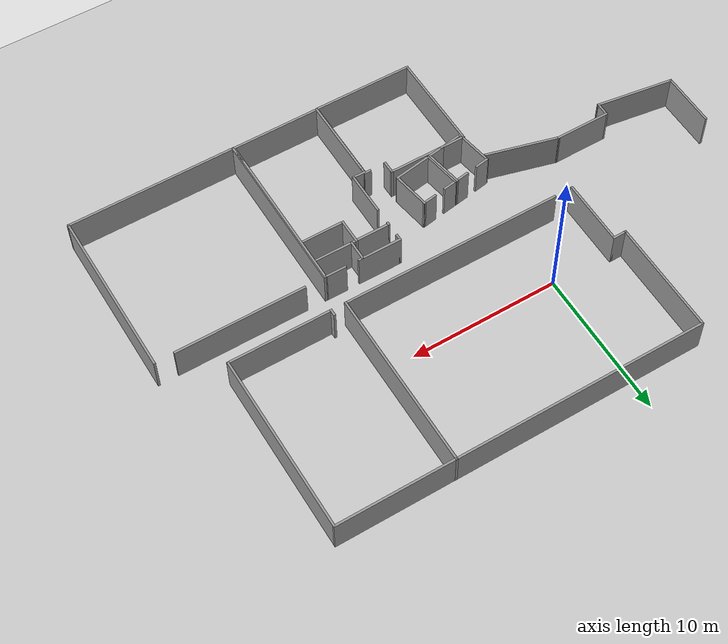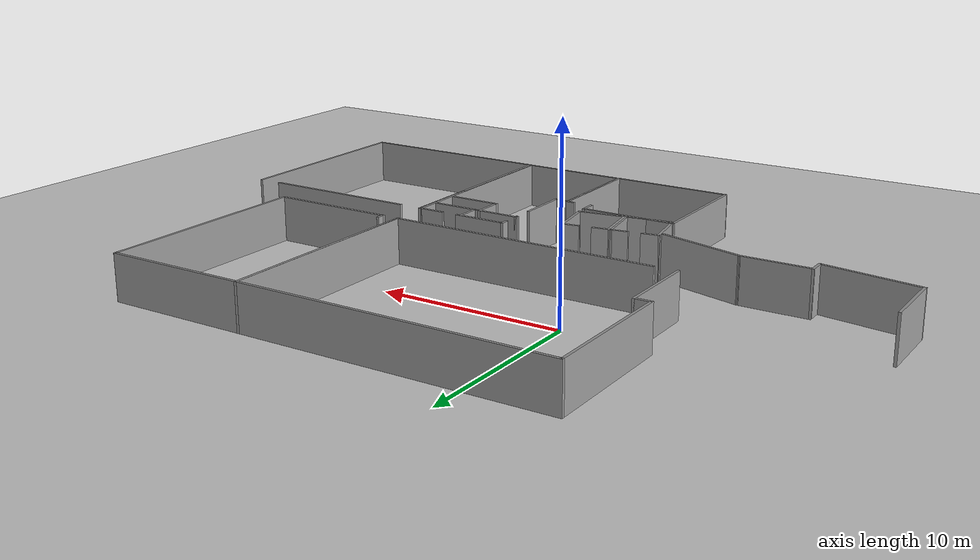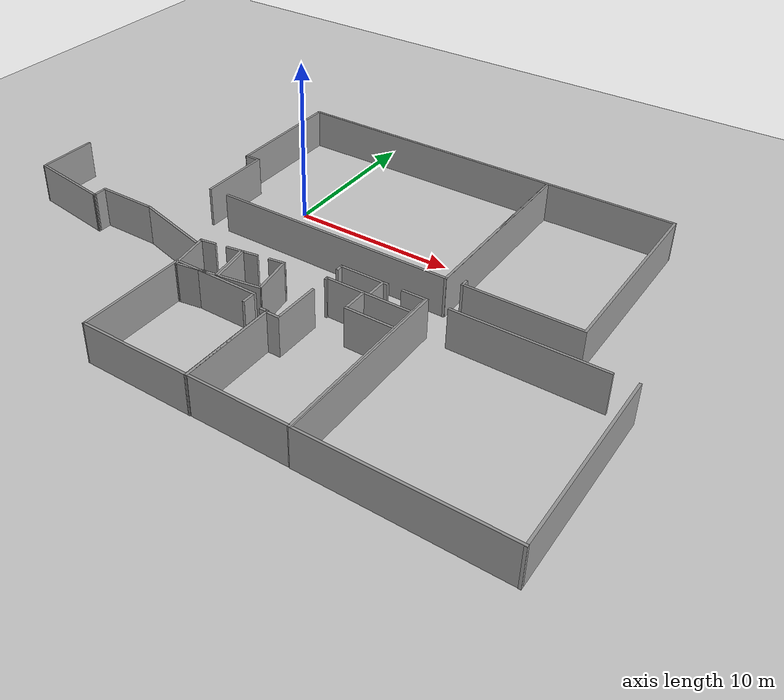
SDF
<sdf version="1.6">
 <world name="default">
  <model name="ground_plane">
   <static>1</static>
   <link name="link">
    <collision name="collision">
     <geometry><plane><normal>0 0 1</normal><size>100 100</size></plane></geometry>
     <surface><friction><ode><mu>100</mu><mu2>50</mu2></ode></friction></surface>
    </collision>
    <visual name="visual">
     <cast_shadows>0</cast_shadows>
     <geometry><plane><normal>0 0 1</normal><size>100 100</size></plane></geometry>
     <material>
      <script><uri>file://media/materials/scripts/gazebo.material</uri><name>Gazebo/Grey</name></script>
     </material>
    </visual>
   </link>
  </model>
  <model name="203">
   <pose>3.7245 2.023 0 0 -0 0</pose>
   <link name="Wall_0">
    <collision name="Wall_0_Collision">
     <geometry><box><size>15 0.15 2.5</size></box></geometry>
     <pose>0 0 1.25 0 -0 0</pose>
    </collision>
    <visual name="Wall_0_Visual">
     <pose>0 0 1.25 0 -0 0</pose>
     <geometry><box><size>15 0.15 2.5</size></box></geometry>
     <material>
      <script><uri>file://media/materials/scripts/gazebo.material</uri><name>Gazebo/Grey</name></script>
      <ambient>1 1 1 1</ambient>
     </material>
     <meta><layer>0</layer></meta>
    </visual>
    <pose>1.0725 -6.013 0 0 -0 0</pose>
   </link>
   <link name="Wall_1">
    <collision name="Wall_1_Collision">
     <geometry><box><size>12.192 0.15 2.5</size></box></geometry>
     <pose>0 0 1.25 0 -0 0</pose>
    </collision>
    <visual name="Wall_1_Visual">
     <pose>0 0 1.25 0 -0 0</pose>
     <geometry><box><size>12.192 0.15 2.5</size></box></geometry>
     <material>
      <script><uri>file://media/materials/scripts/gazebo.material</uri><name>Gazebo/Grey</name></script>
      <ambient>1 1 1 1</ambient>
     </material>
     <meta><layer>0</layer></meta>
    </visual>
    <pose>8.4975 0.008 0 0 -0 1.5708</pose>
   </link>
   <link name="Wall_2">
    <collision name="Wall_2_Collision">
     <geometry><box><size>17.145 0.15 2.5</size></box></geometry>
     <pose>0 0 1.25 0 -0 0</pose>
    </collision>
    <visual name="Wall_2_Visual">
     <pose>0 0 1.25 0 -0 0</pose>
     <geometry><box><size>17.145 0.15 2.5</size></box></geometry>
     <material>
      <script><uri>file://media/materials/scripts/gazebo.material</uri><name>Gazebo/Grey</name></script>
      <ambient>1 1 1 1</ambient>
     </material>
     <meta><layer>0</layer></meta>
    </visual>
    <pose>-0 6.029 0 0 -0 3.14159</pose>
   </link>
   <link name="Wall_3">
    <collision name="Wall_3_Collision">
     <geometry><box><size>7.786 0.15 2.5</size></box></geometry>
     <pose>0 0 1.25 0 -0 0</pose>
    </collision>
    <visual name="Wall_3_Visual">
     <pose>0 0 1.25 0 -0 0</pose>
     <geometry><box><size>7.786 0.15 2.5</size></box></geometry>
     <material>
      <script><uri>file://media/materials/scripts/gazebo.material</uri><name>Gazebo/Grey</name></script>
      <ambient>1 1 1 1</ambient>
     </material>
     <meta><layer>0</layer></meta>
    </visual>
    <pose>-8.4975 2.211 0 0 -0 -1.5708</pose>
   </link>
   <link name="Wall_4">
    <collision name="Wall_4_Collision">
     <geometry><box><size>1 0.15 2.5</size></box></geometry>
     <pose>0 0 1.25 0 -0 0</pose>
    </collision>
    <visual name="Wall_4_Visual">
     <pose>0 0 1.25 0 -0 0</pose>
     <geometry><box><size>1 0.15 2.5</size></box></geometry>
     <material>
      <script><uri>file://media/materials/scripts/gazebo.material</uri><name>Gazebo/Grey</name></script>
      <ambient>1 1 1 1</ambient>
     </material>
     <meta><layer>0</layer></meta>
    </visual>
    <pose>-8.0725 -1.607 0 0 -0 0</pose>
   </link>
   <link name="Wall_5">
    <collision name="Wall_5_Collision">
     <geometry><box><size>4.572 0.15 2.5</size></box></geometry>
     <pose>0 0 1.25 0 -0 0</pose>
    </collision>
    <visual name="Wall_5_Visual">
     <pose>0 0 1.25 0 -0 0</pose>
     <geometry><box><size>4.572 0.15 2.5</size></box></geometry>
     <material>
      <script><uri>file://media/materials/scripts/gazebo.material</uri><name>Gazebo/Grey</name></script>
      <ambient>1 1 1 1</ambient>
     </material>
     <meta><layer>0</layer></meta>
    </visual>
    <pose>-7.6475 -3.818 0 0 -0 -1.5708</pose>
   </link>
   <static>1</static>
  </model>
  <model name="classrooms">
   <pose>16.1404 2.02516 0 0 -0 0</pose>
   <link name="Wall_39">
    <collision name="Wall_39_Collision">
     <geometry><box><size>12.192 0.15 2.5</size></box></geometry>
     <pose>0 0 1.25 0 -0 0</pose>
    </collision>
    <visual name="Wall_39_Visual">
     <pose>0 0 1.25 0 -0 0</pose>
     <geometry><box><size>12.192 0.15 2.5</size></box></geometry>
     <material>
      <script><uri>file://media/materials/scripts/gazebo.material</uri><name>Gazebo/Grey</name></script>
      <ambient>1 1 1 1</ambient>
     </material>
     <meta><layer>0</layer></meta>
    </visual>
    <pose>3.92486 -0.000205 0 0 -0 1.5708</pose>
   </link>
   <link name="Wall_40">
    <collision name="Wall_40_Collision">
     <geometry><box><size>7.99972 0.15 2.5</size></box></geometry>
     <pose>0 0 1.25 0 -0 0</pose>
    </collision>
    <visual name="Wall_40_Visual">
     <pose>0 0 1.25 0 -0 0</pose>
     <geometry><box><size>7.99972 0.15 2.5</size></box></geometry>
     <material>
      <script><uri>file://media/materials/scripts/gazebo.material</uri><name>Gazebo/Grey</name></script>
      <ambient>1 1 1 1</ambient>
     </material>
     <meta><layer>0</layer></meta>
    </visual>
    <pose>0 6.02093 0 0 -0 3.14156</pose>
   </link>
   <link name="Wall_41">
    <collision name="Wall_41_Collision">
     <geometry><box><size>12.1923 0.15 2.5</size></box></geometry>
     <pose>0 0 1.25 0 -0 0</pose>
    </collision>
    <visual name="Wall_41_Visual">
     <pose>0 0 1.25 0 -0 0</pose>
     <geometry><box><size>12.1923 0.15 2.5</size></box></geometry>
     <material>
      <script><uri>file://media/materials/scripts/gazebo.material</uri><name>Gazebo/Grey</name></script>
      <ambient>1 1 1 1</ambient>
     </material>
     <meta><layer>0</layer></meta>
    </visual>
    <pose>-3.92486 6.8e-05 0 0 -0 -1.5708</pose>
   </link>
   <link name="Wall_43">
    <collision name="Wall_43_Collision">
     <geometry><box><size>7 0.15 2.5</size></box></geometry>
     <pose>0 0 1.25 0 -0 0</pose>
    </collision>
    <visual name="Wall_43_Visual">
     <pose>0 0 1.25 0 -0 0</pose>
     <geometry><box><size>7 0.15 2.5</size></box></geometry>
     <material>
      <script><uri>file://media/materials/scripts/gazebo.material</uri><name>Gazebo/Grey</name></script>
      <ambient>1 1 1 1</ambient>
     </material>
     <meta><layer>0</layer></meta>
    </visual>
    <pose>0.49986 -6.02121 0 0 -0 3.14159</pose>
   </link>
   <link name="Wall_44">
    <collision name="Wall_44_Collision">
     <geometry><box><size>0.5 0.15 2.5</size></box></geometry>
     <pose>0 0 1.25 0 -0 0</pose>
    </collision>
    <visual name="Wall_44_Visual">
     <pose>0 0 1.25 0 -0 0</pose>
     <geometry><box><size>0.5 0.15 2.5</size></box></geometry>
     <material>
      <script><uri>file://media/materials/scripts/gazebo.material</uri><name>Gazebo/Grey</name></script>
      <ambient>1 1 1 1</ambient>
     </material>
     <meta><layer>0</layer></meta>
    </visual>
    <pose>-2.92514 -5.84621 0 0 -0 1.5708</pose>
   </link>
   <static>1</static>
  </model>
  <model name="207">
   <pose>18.0365 -11.8818 0 0 -0 0</pose>
   <link name="Wall_50">
    <collision name="Wall_50_Collision">
     <geometry><box><size>11.46 0.15 2.5</size></box></geometry>
     <pose>0 0 1.25 0 -0 0</pose>
    </collision>
    <visual name="Wall_50_Visual">
     <pose>0 0 1.25 0 -0 0</pose>
     <geometry><box><size>11.46 0.15 2.5</size></box></geometry>
     <material>
      <script><uri>file://media/materials/scripts/gazebo.material</uri><name>Gazebo/Grey</name></script>
      <ambient>1 1 1 1</ambient>
     </material>
     <meta><layer>0</layer></meta>
    </visual>
    <pose>7.2e-05 -5.65487 0 0 -0 -2.4e-05</pose>
   </link>
   <link name="Wall_51">
    <collision name="Wall_51_Collision">
     <geometry><box><size>11.5001 0.15 2.5</size></box></geometry>
     <pose>0 0 1.25 0 -0 0</pose>
    </collision>
    <visual name="Wall_51_Visual">
     <pose>0 0 1.25 0 -0 0</pose>
     <geometry><box><size>11.5001 0.15 2.5</size></box></geometry>
     <material>
      <script><uri>file://media/materials/scripts/gazebo.material</uri><name>Gazebo/Grey</name></script>
      <ambient>1 1 1 1</ambient>
     </material>
     <meta><layer>0</layer></meta>
    </visual>
    <pose>5.65493 -1e-06 0 0 -0 1.5708</pose>
   </link>
   <link name="Wall_53">
    <collision name="Wall_53_Collision">
     <geometry><box><size>11.4597 0.15 2.5</size></box></geometry>
     <pose>0 0 1.25 0 -0 0</pose>
    </collision>
    <visual name="Wall_53_Visual">
     <pose>0 0 1.25 0 -0 0</pose>
     <geometry><box><size>11.4597 0.15 2.5</size></box></geometry>
     <material>
      <script><uri>file://media/materials/scripts/gazebo.material</uri><name>Gazebo/Grey</name></script>
      <ambient>1 1 1 1</ambient>
     </material>
     <meta><layer>0</layer></meta>
    </visual>
    <pose>-5.65493 0.020199 0 0 -0 -1.57077</pose>
   </link>
   <link name="Wall_56">
    <collision name="Wall_56_Collision">
     <geometry><box><size>8.76 0.15 2.5</size></box></geometry>
     <pose>0 0 1.25 0 -0 0</pose>
    </collision>
    <visual name="Wall_56_Visual">
     <pose>0 0 1.25 0 -0 0</pose>
     <geometry><box><size>8.76 0.15 2.5</size></box></geometry>
     <material>
      <script><uri>file://media/materials/scripts/gazebo.material</uri><name>Gazebo/Grey</name></script>
      <ambient>1 1 1 1</ambient>
     </material>
     <meta><layer>0</layer></meta>
    </visual>
    <pose>-7.2e-05 5.67506 0 0 -0 0</pose>
   </link>
   <static>1</static>
  </model>
  <model name="205">
   <pose>9.3396 -11.8618 0 0 -0 0</pose>
   <link name="Wall_59">
    <collision name="Wall_59_Collision">
     <geometry><box><size>6.096 0.15 2.5</size></box></geometry>
     <pose>0 0 1.25 0 -0 0</pose>
    </collision>
    <visual name="Wall_59_Visual">
     <pose>0 0 1.25 0 -0 0</pose>
     <geometry><box><size>6.096 0.15 2.5</size></box></geometry>
     <material>
      <script><uri>file://media/materials/scripts/gazebo.material</uri><name>Gazebo/Grey</name></script>
      <ambient>1 1 1 1</ambient>
     </material>
     <meta><layer>0</layer></meta>
    </visual>
    <pose>0.000181 -5.65489 0 0 -0 0</pose>
   </link>
   <link name="Wall_60">
    <collision name="Wall_60_Collision">
     <geometry><box><size>11.46 0.15 2.5</size></box></geometry>
     <pose>0 0 1.25 0 -0 0</pose>
    </collision>
    <visual name="Wall_60_Visual">
     <pose>0 0 1.25 0 -0 0</pose>
     <geometry><box><size>11.46 0.15 2.5</size></box></geometry>
     <material>
      <script><uri>file://media/materials/scripts/gazebo.material</uri><name>Gazebo/Grey</name></script>
      <ambient>1 1 1 1</ambient>
     </material>
     <meta><layer>0</layer></meta>
    </visual>
    <pose>2.973 2e-06 0 0 -0 1.57083</pose>
   </link>
   <link name="Wall_63">
    <collision name="Wall_63_Collision">
     <geometry><box><size>5.23836 0.15 2.5</size></box></geometry>
     <pose>0 0 1.25 0 -0 0</pose>
    </collision>
    <visual name="Wall_63_Visual">
     <pose>0 0 1.25 0 -0 0</pose>
     <geometry><box><size>5.23836 0.15 2.5</size></box></geometry>
     <material>
      <script><uri>file://media/materials/scripts/gazebo.material</uri><name>Gazebo/Grey</name></script>
      <ambient>1 1 1 1</ambient>
     </material>
     <meta><layer>0</layer></meta>
    </visual>
    <pose>0.332822 4.3449 0 0 -0 0</pose>
   </link>
   <link name="Wall_65">
    <collision name="Wall_65_Collision">
     <geometry><box><size>1.4 0.15 2.5</size></box></geometry>
     <pose>0 0 1.25 0 -0 0</pose>
    </collision>
    <visual name="Wall_65_Visual">
     <pose>0 0 1.25 0 -0 0</pose>
     <geometry><box><size>1.4 0.15 2.5</size></box></geometry>
     <material>
      <script><uri>file://media/materials/scripts/gazebo.material</uri><name>Gazebo/Grey</name></script>
      <ambient>1 1 1 1</ambient>
     </material>
     <meta><layer>0</layer></meta>
    </visual>
    <pose>0.397839 5.00182 0 0 -0 1.5708</pose>
   </link>
   <link name="Wall_67">
    <collision name="Wall_67_Collision">
     <geometry><box><size>1.75 0.15 2.5</size></box></geometry>
     <pose>0 0 1.25 0 -0 0</pose>
    </collision>
    <visual name="Wall_67_Visual">
     <pose>0 0 1.25 0 -0 0</pose>
     <geometry><box><size>1.75 0.15 2.5</size></box></geometry>
     <material>
      <script><uri>file://media/materials/scripts/gazebo.material</uri><name>Gazebo/Grey</name></script>
      <ambient>1 1 1 1</ambient>
     </material>
     <meta><layer>0</layer></meta>
    </visual>
    <pose>0.076823 3.55676 0 0 -0 -1.5708</pose>
   </link>
   <link name="Wall_68">
    <collision name="Wall_68_Collision">
     <geometry><box><size>3 0.15 2.5</size></box></geometry>
     <pose>0 0 1.25 0 -0 0</pose>
    </collision>
    <visual name="Wall_68_Visual">
     <pose>0 0 1.25 0 -0 0</pose>
     <geometry><box><size>3 0.15 2.5</size></box></geometry>
     <material>
      <script><uri>file://media/materials/scripts/gazebo.material</uri><name>Gazebo/Grey</name></script>
      <ambient>1 1 1 1</ambient>
     </material>
     <meta><layer>0</layer></meta>
    </visual>
    <pose>1.50182 2.75676 0 0 -0 0</pose>
   </link>
   <link name="Wall_70">
    <collision name="Wall_70_Collision">
     <geometry><box><size>6 0.15 2.5</size></box></geometry>
     <pose>0 0 1.25 0 -0 0</pose>
    </collision>
    <visual name="Wall_70_Visual">
     <pose>0 0 1.25 0 -0 0</pose>
     <geometry><box><size>6 0.15 2.5</size></box></geometry>
     <material>
      <script><uri>file://media/materials/scripts/gazebo.material</uri><name>Gazebo/Grey</name></script>
      <ambient>1 1 1 1</ambient>
     </material>
     <meta><layer>0</layer></meta>
    </visual>
    <pose>-2.973 -2.73 0 0 -0 1.57086</pose>
   </link>
   <link name="Wall_71">
    <collision name="Wall_71_Collision">
     <geometry><box><size>0.912 0.15 2.5</size></box></geometry>
     <pose>0 0 1.25 0 -0 0</pose>
    </collision>
    <visual name="Wall_71_Visual">
     <pose>0 0 1.25 0 -0 0</pose>
     <geometry><box><size>0.912 0.15 2.5</size></box></geometry>
     <material>
      <script><uri>file://media/materials/scripts/gazebo.material</uri><name>Gazebo/Grey</name></script>
      <ambient>1 1 1 1</ambient>
     </material>
     <meta><layer>0</layer></meta>
    </visual>
    <pose>-2.59218 0.194898 0 0 -0 0</pose>
   </link>
   <link name="Wall_74">
    <collision name="Wall_74_Collision">
     <geometry><box><size>3 0.15 2.5</size></box></geometry>
     <pose>0 0 1.25 0 -0 0</pose>
    </collision>
    <visual name="Wall_74_Visual">
     <pose>0 0 1.25 0 -0 0</pose>
     <geometry><box><size>3 0.15 2.5</size></box></geometry>
     <material>
      <script><uri>file://media/materials/scripts/gazebo.material</uri><name>Gazebo/Grey</name></script>
      <ambient>1 1 1 1</ambient>
     </material>
     <meta><layer>0</layer></meta>
    </visual>
    <pose>-2.21118 1.6199 0 0 -0 1.5708</pose>
   </link>
   <link name="Wall_76">
    <collision name="Wall_76_Collision">
     <geometry><box><size>0.5 0.15 2.5</size></box></geometry>
     <pose>0 0 1.25 0 -0 0</pose>
    </collision>
    <visual name="Wall_76_Visual">
     <pose>0 0 1.25 0 -0 0</pose>
     <geometry><box><size>0.5 0.15 2.5</size></box></geometry>
     <material>
      <script><uri>file://media/materials/scripts/gazebo.material</uri><name>Gazebo/Grey</name></script>
      <ambient>1 1 1 1</ambient>
     </material>
     <meta><layer>0</layer></meta>
    </visual>
    <pose>-2.21118 5.4799 0 0 -0 -1.5708</pose>
   </link>
   <link name="Wall_80">
    <collision name="Wall_80_Collision">
     <geometry><box><size>0.25 0.15 2.5</size></box></geometry>
     <pose>0 0 1.25 0 -0 0</pose>
    </collision>
    <visual name="Wall_80_Visual">
     <pose>0 0 1.25 0 -0 0</pose>
     <geometry><box><size>0.25 0.15 2.5</size></box></geometry>
     <material>
      <script><uri>file://media/materials/scripts/gazebo.material</uri><name>Gazebo/Grey</name></script>
      <ambient>1 1 1 1</ambient>
     </material>
     <meta><layer>0</layer></meta>
    </visual>
    <pose>-2.21118 4.2949 0 0 -0 -1.5708</pose>
   </link>
   <link name="Wall_82">
    <collision name="Wall_82_Collision">
     <geometry><box><size>3 0.15 2.5</size></box></geometry>
     <pose>0 0 1.25 0 -0 0</pose>
    </collision>
    <visual name="Wall_82_Visual">
     <pose>0 0 1.25 0 -0 0</pose>
     <geometry><box><size>3 0.15 2.5</size></box></geometry>
     <material>
      <script><uri>file://media/materials/scripts/gazebo.material</uri><name>Gazebo/Grey</name></script>
      <ambient>1 1 1 1</ambient>
     </material>
     <meta><layer>0</layer></meta>
    </visual>
    <pose>-0.786178 5.6549 0 0 -0 0</pose>
   </link>
   <link name="Wall_84">
    <collision name="Wall_84_Collision">
     <geometry><box><size>1.5 0.15 2.5</size></box></geometry>
     <pose>0 0 1.25 0 -0 0</pose>
    </collision>
    <visual name="Wall_84_Visual">
     <pose>0 0 1.25 0 -0 0</pose>
     <geometry><box><size>1.5 0.15 2.5</size></box></geometry>
     <material>
      <script><uri>file://media/materials/scripts/gazebo.material</uri><name>Gazebo/Grey</name></script>
      <ambient>1 1 1 1</ambient>
     </material>
     <meta><layer>0</layer></meta>
    </visual>
    <pose>2.29782 5.6549 0 0 -0 0</pose>
   </link>
   <static>1</static>
  </model>
  <model name="205A">
   <pose>2.99275 -14.1754 0 0 -0 0</pose>
   <link name="Wall_86">
    <collision name="Wall_86_Collision">
     <geometry><box><size>6.858 0.15 2.5</size></box></geometry>
     <pose>0 0 1.25 0 -0 0</pose>
    </collision>
    <visual name="Wall_86_Visual">
     <pose>0 0 1.25 0 -0 0</pose>
     <geometry><box><size>6.858 0.15 2.5</size></box></geometry>
     <material>
      <script><uri>file://media/materials/scripts/gazebo.material</uri><name>Gazebo/Grey</name></script>
      <ambient>1 1 1 1</ambient>
     </material>
     <meta><layer>0</layer></meta>
    </visual>
    <pose>-3.354 0.010144 0 0 -0 -1.5708</pose>
   </link>
   <link name="Wall_87">
    <collision name="Wall_87_Collision">
     <geometry><box><size>6.858 0.15 2.5</size></box></geometry>
     <pose>0 0 1.25 0 -0 0</pose>
    </collision>
    <visual name="Wall_87_Visual">
     <pose>0 0 1.25 0 -0 0</pose>
     <geometry><box><size>6.858 0.15 2.5</size></box></geometry>
     <material>
      <script><uri>file://media/materials/scripts/gazebo.material</uri><name>Gazebo/Grey</name></script>
      <ambient>1 1 1 1</ambient>
     </material>
     <meta><layer>0</layer></meta>
    </visual>
    <pose>0 -3.35389 0 0 -0 -0.002991</pose>
   </link>
   <link name="Wall_88">
    <collision name="Wall_88_Collision">
     <geometry><box><size>6.096 0.15 2.5</size></box></geometry>
     <pose>0 0 1.25 0 -0 0</pose>
    </collision>
    <visual name="Wall_88_Visual">
     <pose>0 0 1.25 0 -0 0</pose>
     <geometry><box><size>6.096 0.15 2.5</size></box></geometry>
     <material>
      <script><uri>file://media/materials/scripts/gazebo.material</uri><name>Gazebo/Grey</name></script>
      <ambient>1 1 1 1</ambient>
     </material>
     <meta><layer>0</layer></meta>
    </visual>
    <pose>3.354 -0.390888 0 0 -0 1.5708</pose>
   </link>
   <link name="Wall_90">
    <collision name="Wall_90_Collision">
     <geometry><box><size>0.932 0.15 2.5</size></box></geometry>
     <pose>0 0 1.25 0 -0 0</pose>
    </collision>
    <visual name="Wall_90_Visual">
     <pose>0 0 1.25 0 -0 0</pose>
     <geometry><box><size>0.932 0.15 2.5</size></box></geometry>
     <material>
      <script><uri>file://media/materials/scripts/gazebo.material</uri><name>Gazebo/Grey</name></script>
      <ambient>1 1 1 1</ambient>
     </material>
     <meta><layer>0</layer></meta>
    </visual>
    <pose>1.896 2.97314 0 0 -0 1.5708</pose>
   </link>
   <link name="Wall_91">
    <collision name="Wall_91_Collision">
     <geometry><box><size>5.4 0.15 2.5</size></box></geometry>
     <pose>0 0 1.25 0 -0 0</pose>
    </collision>
    <visual name="Wall_91_Visual">
     <pose>0 0 1.25 0 -0 0</pose>
     <geometry><box><size>5.4 0.15 2.5</size></box></geometry>
     <material>
      <script><uri>file://media/materials/scripts/gazebo.material</uri><name>Gazebo/Grey</name></script>
      <ambient>1 1 1 1</ambient>
     </material>
     <meta><layer>0</layer></meta>
    </visual>
    <pose>-0.729 3.36414 0 0 -0 3.14159</pose>
   </link>
   <link name="Wall_93">
    <collision name="Wall_93_Collision">
     <geometry><box><size>0.5 0.15 2.5</size></box></geometry>
     <pose>0 0 1.25 0 -0 0</pose>
    </collision>
    <visual name="Wall_93_Visual">
     <pose>0 0 1.25 0 -0 0</pose>
     <geometry><box><size>0.5 0.15 2.5</size></box></geometry>
     <material>
      <script><uri>file://media/materials/scripts/gazebo.material</uri><name>Gazebo/Grey</name></script>
      <ambient>1 1 1 1</ambient>
     </material>
     <meta><layer>0</layer></meta>
    </visual>
    <pose>3.179 2.58214 0 0 -0 3.14159</pose>
   </link>
   <static>1</static>
  </model>
  <model name="195">
   <pose>0.783312 -9.59518 0 0 -0 0.16262</pose>
   <link name="Wall_52">
    <collision name="Wall_52_Collision">
     <geometry><box><size>2.667 0.15 2.5</size></box></geometry>
     <pose>0 0 1.25 0 -0 0</pose>
    </collision>
    <visual name="Wall_52_Visual">
     <pose>0 0 1.25 0 -0 0</pose>
     <geometry><box><size>2.667 0.15 2.5</size></box></geometry>
     <material>
      <script><uri>file://media/materials/scripts/gazebo.material</uri><name>Gazebo/Grey</name></script>
      <ambient>1 1 1 1</ambient>
     </material>
     <meta><layer>0</layer></meta>
    </visual>
    <pose>-0.000138 -1.2585 0 0 -0 0</pose>
   </link>
   <link name="Wall_53">
    <collision name="Wall_53_Collision">
     <geometry><box><size>2.667 0.15 2.5</size></box></geometry>
     <pose>0 0 1.25 0 -0 0</pose>
    </collision>
    <visual name="Wall_53_Visual">
     <pose>0 0 1.25 0 -0 0</pose>
     <geometry><box><size>2.667 0.15 2.5</size></box></geometry>
     <material>
      <script><uri>file://media/materials/scripts/gazebo.material</uri><name>Gazebo/Grey</name></script>
      <ambient>1 1 1 1</ambient>
     </material>
     <meta><layer>0</layer></meta>
    </visual>
    <pose>1.2585 0 0 0 -0 1.57069</pose>
   </link>
   <link name="Wall_55">
    <collision name="Wall_55_Collision">
     <geometry><box><size>2.667 0.15 2.5</size></box></geometry>
     <pose>0 0 1.25 0 -0 0</pose>
    </collision>
    <visual name="Wall_55_Visual">
     <pose>0 0 1.25 0 -0 0</pose>
     <geometry><box><size>2.667 0.15 2.5</size></box></geometry>
     <material>
      <script><uri>file://media/materials/scripts/gazebo.material</uri><name>Gazebo/Grey</name></script>
      <ambient>1 1 1 1</ambient>
     </material>
     <meta><layer>0</layer></meta>
    </visual>
    <pose>-1.2585 0 0 0 -0 -1.57091</pose>
   </link>
   <link name="Wall_57">
    <collision name="Wall_57_Collision">
     <geometry><box><size>1 0.15 2.5</size></box></geometry>
     <pose>0 0 1.25 0 -0 0</pose>
    </collision>
    <visual name="Wall_57_Visual">
     <pose>0 0 1.25 0 -0 0</pose>
     <geometry><box><size>1 0.15 2.5</size></box></geometry>
     <material>
      <script><uri>file://media/materials/scripts/gazebo.material</uri><name>Gazebo/Grey</name></script>
      <ambient>1 1 1 1</ambient>
     </material>
     <meta><layer>0</layer></meta>
    </visual>
    <pose>0.833639 1.2585 0 0 -0 3.14159</pose>
   </link>
   <link name="Wall_59">
    <collision name="Wall_59_Collision">
     <geometry><box><size>1 0.15 2.5</size></box></geometry>
     <pose>0 0 1.25 0 -0 0</pose>
    </collision>
    <visual name="Wall_59_Visual">
     <pose>0 0 1.25 0 -0 0</pose>
     <geometry><box><size>1 0.15 2.5</size></box></geometry>
     <material>
      <script><uri>file://media/materials/scripts/gazebo.material</uri><name>Gazebo/Grey</name></script>
      <ambient>1 1 1 1</ambient>
     </material>
     <meta><layer>0</layer></meta>
    </visual>
    <pose>-0.833361 1.2585 0 0 -0 3.14159</pose>
   </link>
   <static>1</static>
  </model>
  <model name="195_0">
   <pose>3.38669 -9.17723 0 0 -0 0.158894</pose>
   <link name="Wall_52">
    <collision name="Wall_52_Collision">
     <geometry><box><size>2.667 0.15 2.5</size></box></geometry>
     <pose>0 0 1.25 0 -0 0</pose>
    </collision>
    <visual name="Wall_52_Visual">
     <pose>0 0 1.25 0 -0 0</pose>
     <geometry><box><size>2.667 0.15 2.5</size></box></geometry>
     <material>
      <script><uri>file://media/materials/scripts/gazebo.material</uri><name>Gazebo/Grey</name></script>
      <ambient>1 1 1 1</ambient>
     </material>
     <meta><layer>0</layer></meta>
    </visual>
    <pose>-0.000138 -1.2585 0 0 -0 0</pose>
   </link>
   <link name="Wall_53">
    <collision name="Wall_53_Collision">
     <geometry><box><size>2.667 0.15 2.5</size></box></geometry>
     <pose>0 0 1.25 0 -0 0</pose>
    </collision>
    <visual name="Wall_53_Visual">
     <pose>0 0 1.25 0 -0 0</pose>
     <geometry><box><size>2.667 0.15 2.5</size></box></geometry>
     <material>
      <script><uri>file://media/materials/scripts/gazebo.material</uri><name>Gazebo/Grey</name></script>
      <ambient>1 1 1 1</ambient>
     </material>
     <meta><layer>0</layer></meta>
    </visual>
    <pose>1.2585 0 0 0 -0 1.57069</pose>
   </link>
   <link name="Wall_55">
    <collision name="Wall_55_Collision">
     <geometry><box><size>2.667 0.15 2.5</size></box></geometry>
     <pose>0 0 1.25 0 -0 0</pose>
    </collision>
    <visual name="Wall_55_Visual">
     <pose>0 0 1.25 0 -0 0</pose>
     <geometry><box><size>2.667 0.15 2.5</size></box></geometry>
     <material>
      <script><uri>file://media/materials/scripts/gazebo.material</uri><name>Gazebo/Grey</name></script>
      <ambient>1 1 1 1</ambient>
     </material>
     <meta><layer>0</layer></meta>
    </visual>
    <pose>-1.2585 0 0 0 -0 -1.57091</pose>
   </link>
   <link name="Wall_57">
    <collision name="Wall_57_Collision">
     <geometry><box><size>1 0.15 2.5</size></box></geometry>
     <pose>0 0 1.25 0 -0 0</pose>
    </collision>
    <visual name="Wall_57_Visual">
     <pose>0 0 1.25 0 -0 0</pose>
     <geometry><box><size>1 0.15 2.5</size></box></geometry>
     <material>
      <script><uri>file://media/materials/scripts/gazebo.material</uri><name>Gazebo/Grey</name></script>
      <ambient>1 1 1 1</ambient>
     </material>
     <meta><layer>0</layer></meta>
    </visual>
    <pose>0.833639 1.2585 0 0 -0 3.14159</pose>
   </link>
   <link name="Wall_59">
    <collision name="Wall_59_Collision">
     <geometry><box><size>1 0.15 2.5</size></box></geometry>
     <pose>0 0 1.25 0 -0 0</pose>
    </collision>
    <visual name="Wall_59_Visual">
     <pose>0 0 1.25 0 -0 0</pose>
     <geometry><box><size>1 0.15 2.5</size></box></geometry>
     <material>
      <script><uri>file://media/materials/scripts/gazebo.material</uri><name>Gazebo/Grey</name></script>
      <ambient>1 1 1 1</ambient>
     </material>
     <meta><layer>0</layer></meta>
    </visual>
    <pose>-0.833361 1.2585 0 0 -0 3.14159</pose>
   </link>
   <static>1</static>
  </model>
  <model name="200">
   <pose>-7.49119 -6.48916 0 0 -0 0</pose>
   <link name="Wall_95">
    <collision name="Wall_95_Collision">
     <geometry><box><size>4.953 0.15 2.5</size></box></geometry>
     <pose>0 0 1.25 0 -0 0</pose>
    </collision>
    <visual name="Wall_95_Visual">
     <pose>0 0 1.25 0 -0 0</pose>
     <geometry><box><size>4.953 0.15 2.5</size></box></geometry>
     <material>
      <script><uri>file://media/materials/scripts/gazebo.material</uri><name>Gazebo/Grey</name></script>
      <ambient>1 1 1 1</ambient>
     </material>
     <meta><layer>0</layer></meta>
    </visual>
    <pose>4.39089 -1.77661 0 0 -0 2.87979</pose>
   </link>
   <link name="Wall_96">
    <collision name="Wall_96_Collision">
     <geometry><box><size>3.81 0.15 2.5</size></box></geometry>
     <pose>0 0 1.25 0 -0 0</pose>
    </collision>
    <visual name="Wall_96_Visual">
     <pose>0 0 1.25 0 -0 0</pose>
     <geometry><box><size>3.81 0.15 2.5</size></box></geometry>
     <material>
      <script><uri>file://media/materials/scripts/gazebo.material</uri><name>Gazebo/Grey</name></script>
      <ambient>1 1 1 1</ambient>
     </material>
     <meta><layer>0</layer></meta>
    </visual>
    <pose>0.241223 -1.15505 0 0 -0 3.14159</pose>
   </link>
   <link name="Wall_97">
    <collision name="Wall_97_Collision">
     <geometry><box><size>1 0.15 2.5</size></box></geometry>
     <pose>0 0 1.25 0 -0 0</pose>
    </collision>
    <visual name="Wall_97_Visual">
     <pose>0 0 1.25 0 -0 0</pose>
     <geometry><box><size>1 0.15 2.5</size></box></geometry>
     <material>
      <script><uri>file://media/materials/scripts/gazebo.material</uri><name>Gazebo/Grey</name></script>
      <ambient>1 1 1 1</ambient>
     </material>
     <meta><layer>0</layer></meta>
    </visual>
    <pose>-1.58901 -1.58002 0 0 -0 -1.57134</pose>
   </link>
   <link name="Wall_98">
    <collision name="Wall_98_Collision">
     <geometry><box><size>5.334 0.15 2.5</size></box></geometry>
     <pose>0 0 1.25 0 -0 0</pose>
    </collision>
    <visual name="Wall_98_Visual">
     <pose>0 0 1.25 0 -0 0</pose>
     <geometry><box><size>5.334 0.15 2.5</size></box></geometry>
     <material>
      <script><uri>file://media/materials/scripts/gazebo.material</uri><name>Gazebo/Grey</name></script>
      <ambient>1 1 1 1</ambient>
     </material>
     <meta><layer>0</layer></meta>
    </visual>
    <pose>-4.15324 -1.62498 0 0 -0 2.99446</pose>
   </link>
   <link name="Wall_99">
    <collision name="Wall_99_Collision">
     <geometry><box><size>3.81 0.15 2.5</size></box></geometry>
     <pose>0 0 1.25 0 -0 0</pose>
    </collision>
    <visual name="Wall_99_Visual">
     <pose>0 0 1.25 0 -0 0</pose>
     <geometry><box><size>3.81 0.15 2.5</size></box></geometry>
     <material>
      <script><uri>file://media/materials/scripts/gazebo.material</uri><name>Gazebo/Grey</name></script>
      <ambient>1 1 1 1</ambient>
     </material>
     <meta><layer>0</layer></meta>
    </visual>
    <pose>-6.71724 0.585016 0 0 -0 1.5708</pose>
   </link>
   <static>1</static>
  </model>
 </world>
</sdf>
